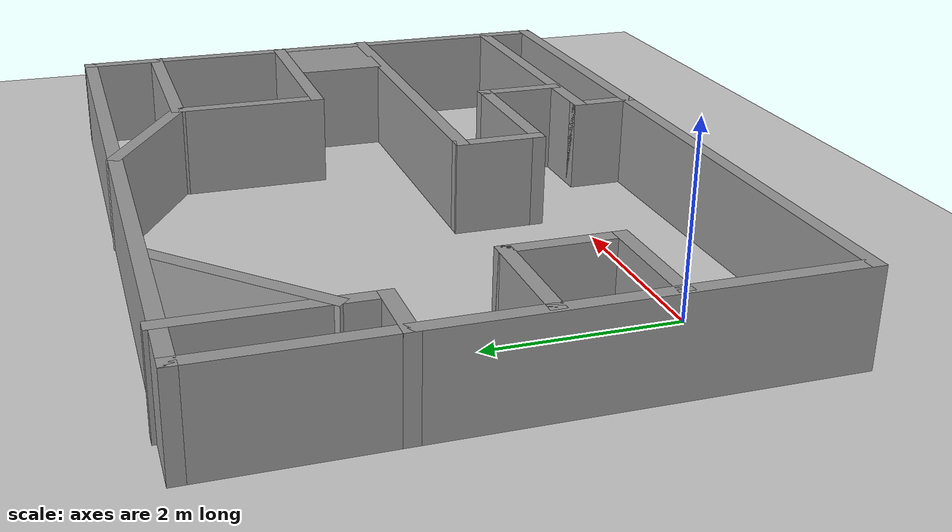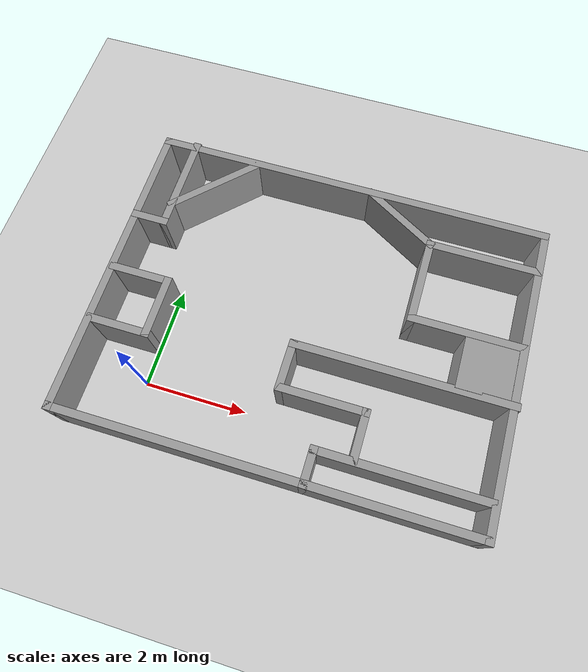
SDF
<sdf version="1.7">
 <world name="default">
  <light name="sun" type="directional">
   <pose>0 0 10 0 -0 0</pose>
   <diffuse>0.8 0.8 0.8 1</diffuse>
   <specular>0.2 0.2 0.2 1</specular>
   <attenuation>
    <range>1000</range>
    <constant>0.9</constant>
    <linear>0.01</linear>
    <quadratic>0.001</quadratic>
   </attenuation>
   <direction>-0.5 0.1 -0.9</direction>
   <spot><inner_angle>0</inner_angle><outer_angle>0</outer_angle><falloff>0</falloff></spot>
  </light>
  <model name="ground_plane">
   <static>1</static>
   <link name="link">
    <collision name="collision">
     <geometry><plane><normal>0 0 1</normal><size>100 100</size></plane></geometry>
     <surface><friction><ode><mu>100</mu><mu2>50</mu2></ode></friction></surface>
    </collision>
    <visual name="visual">
     <cast_shadows>0</cast_shadows>
     <geometry><plane><normal>0 0 1</normal><size>100 100</size></plane></geometry>
     <material>
      <script><uri>file://media/materials/scripts/gazebo.material</uri><name>Gazebo/Grey</name></script>
     </material>
    </visual>
   </link>
  </model>
  <gravity>0 0 -9.8</gravity>
  <magnetic_field>6e-06 2.3e-05 -4.2e-05</magnetic_field>
  <atmosphere type="adiabatic"/>
  <physics type="ode">
   <max_step_size>0.001</max_step_size>
   <real_time_factor>1</real_time_factor>
   <real_time_update_rate>1000</real_time_update_rate>
  </physics>
  <scene><ambient>0.4 0.4 0.4 1</ambient><background>0.7 0.7 0.7 1</background><shadows>1</shadows></scene>
  <spherical_coordinates>
   <surface_model>EARTH_WGS84</surface_model>
   <latitude_deg>0</latitude_deg>
   <longitude_deg>0</longitude_deg>
   <elevation>0</elevation>
   <heading_deg>0</heading_deg>
  </spherical_coordinates>
  <model name="test6">
   <pose>2.74763 1.89938 0 0 -0 0</pose>
   <link name="Wall_12">
    <collision name="Wall_12_Collision">
     <geometry><box><size>0.75 0.15 1</size></box></geometry>
     <pose>0 0 0.5 0 -0 0</pose>
    </collision>
    <visual name="Wall_12_Visual">
     <pose>0 0 0.5 0 -0 0</pose>
     <geometry><box><size>0.75 0.15 1</size></box></geometry>
     <material>
      <script><uri>file://media/materials/scripts/gazebo.material</uri><name>Gazebo/Grey</name></script>
      <ambient>1 1 1 1</ambient>
     </material>
     <meta><layer>0</layer></meta>
    </visual>
    <pose>-3.6435 1.0955 0 0 -0 0</pose>
   </link>
   <link name="Wall_13">
    <collision name="Wall_13_Collision">
     <geometry><box><size>2 0.15 1</size></box></geometry>
     <pose>0 0 0.5 0 -0 0</pose>
    </collision>
    <visual name="Wall_13_Visual">
     <pose>0 0 0.5 0 -0 0</pose>
     <geometry><box><size>2 0.15 1</size></box></geometry>
     <material>
      <script><uri>file://media/materials/scripts/gazebo.material</uri><name>Gazebo/Grey</name></script>
      <ambient>1 1 1 1</ambient>
     </material>
     <meta><layer>0</layer></meta>
    </visual>
    <pose>-3.3435 2.0205 0 0 -0 1.5708</pose>
   </link>
   <link name="Wall_15">
    <collision name="Wall_15_Collision">
     <geometry><box><size>0.75 0.15 1</size></box></geometry>
     <pose>0 0 0.5 0 -0 0</pose>
    </collision>
    <visual name="Wall_15_Visual">
     <pose>0 0 0.5 0 -0 0</pose>
     <geometry><box><size>0.75 0.15 1</size></box></geometry>
     <material>
      <script><uri>file://media/materials/scripts/gazebo.material</uri><name>Gazebo/Grey</name></script>
      <ambient>1 1 1 1</ambient>
     </material>
     <meta><layer>0</layer></meta>
    </visual>
    <pose>0.7435 -2.6455 0 0 -0 1.5708</pose>
   </link>
   <link name="Wall_16">
    <collision name="Wall_16_Collision">
     <geometry><box><size>3.25 0.15 1</size></box></geometry>
     <pose>0 0 0.5 0 -0 0</pose>
    </collision>
    <visual name="Wall_16_Visual">
     <pose>0 0 0.5 0 -0 0</pose>
     <geometry><box><size>3.25 0.15 1</size></box></geometry>
     <material>
      <script><uri>file://media/materials/scripts/gazebo.material</uri><name>Gazebo/Grey</name></script>
      <ambient>1 1 1 1</ambient>
     </material>
     <meta><layer>0</layer></meta>
    </visual>
    <pose>2.2935 -2.3455 0 0 -0 0</pose>
   </link>
   <link name="Wall_18">
    <collision name="Wall_18_Collision">
     <geometry><box><size>1 0.15 1</size></box></geometry>
     <pose>0 0 0.5 0 -0 0</pose>
    </collision>
    <visual name="Wall_18_Visual">
     <pose>0 0 0.5 0 -0 0</pose>
     <geometry><box><size>1 0.15 1</size></box></geometry>
     <material>
      <script><uri>file://media/materials/scripts/gazebo.material</uri><name>Gazebo/Grey</name></script>
      <ambient>1 1 1 1</ambient>
     </material>
     <meta><layer>0</layer></meta>
    </visual>
    <pose>1.4435 -1.8905 0 0 -0 1.5708</pose>
   </link>
   <link name="Wall_19">
    <collision name="Wall_19_Collision">
     <geometry><box><size>1.75 0.15 1</size></box></geometry>
     <pose>0 0 0.5 0 -0 0</pose>
    </collision>
    <visual name="Wall_19_Visual">
     <pose>0 0 0.5 0 -0 0</pose>
     <geometry><box><size>1.75 0.15 1</size></box></geometry>
     <material>
      <script><uri>file://media/materials/scripts/gazebo.material</uri><name>Gazebo/Grey</name></script>
      <ambient>1 1 1 1</ambient>
     </material>
     <meta><layer>0</layer></meta>
    </visual>
    <pose>0.6435 -1.4655 0 0 -0 3.14159</pose>
   </link>
   <link name="Wall_20">
    <collision name="Wall_20_Collision">
     <geometry><box><size>1 0.15 1</size></box></geometry>
     <pose>0 0 0.5 0 -0 0</pose>
    </collision>
    <visual name="Wall_20_Visual">
     <pose>0 0 0.5 0 -0 0</pose>
     <geometry><box><size>1 0.15 1</size></box></geometry>
     <material>
      <script><uri>file://media/materials/scripts/gazebo.material</uri><name>Gazebo/Grey</name></script>
      <ambient>1 1 1 1</ambient>
     </material>
     <meta><layer>0</layer></meta>
    </visual>
    <pose>-0.1565 -1.0405 0 0 -0 1.5708</pose>
   </link>
   <link name="Wall_21">
    <collision name="Wall_21_Collision">
     <geometry><box><size>4.25 0.15 1</size></box></geometry>
     <pose>0 0 0.5 0 -0 0</pose>
    </collision>
    <visual name="Wall_21_Visual">
     <pose>0 0 0.5 0 -0 0</pose>
     <geometry><box><size>4.25 0.15 1</size></box></geometry>
     <material>
      <script><uri>file://media/materials/scripts/gazebo.material</uri><name>Gazebo/Grey</name></script>
      <ambient>1 1 1 1</ambient>
     </material>
     <meta><layer>0</layer></meta>
    </visual>
    <pose>1.8935 -0.6155 0 0 -0 0</pose>
   </link>
   <link name="Wall_23">
    <collision name="Wall_23_Collision">
     <geometry><box><size>2.25 0.15 1</size></box></geometry>
     <pose>0 0 0.5 0 -0 0</pose>
    </collision>
    <visual name="Wall_23_Visual">
     <pose>0 0 0.5 0 -0 0</pose>
     <geometry><box><size>2.25 0.15 1</size></box></geometry>
     <material>
      <script><uri>file://media/materials/scripts/gazebo.material</uri><name>Gazebo/Grey</name></script>
      <ambient>1 1 1 1</ambient>
     </material>
     <meta><layer>0</layer></meta>
    </visual>
    <pose>2.8425 2.0915 0 0 -0 3.14159</pose>
   </link>
   <link name="Wall_24">
    <collision name="Wall_24_Collision">
     <geometry><box><size>1.75 0.15 1</size></box></geometry>
     <pose>0 0 0.5 0 -0 0</pose>
    </collision>
    <visual name="Wall_24_Visual">
     <pose>0 0 0.5 0 -0 0</pose>
     <geometry><box><size>1.75 0.15 1</size></box></geometry>
     <material>
      <script><uri>file://media/materials/scripts/gazebo.material</uri><name>Gazebo/Grey</name></script>
      <ambient>1 1 1 1</ambient>
     </material>
     <meta><layer>0</layer></meta>
    </visual>
    <pose>1.7925 1.2915 0 0 -0 -1.5708</pose>
   </link>
   <link name="Wall_25">
    <collision name="Wall_25_Collision">
     <geometry><box><size>2.25 0.15 1</size></box></geometry>
     <pose>0 0 0.5 0 -0 0</pose>
    </collision>
    <visual name="Wall_25_Visual">
     <pose>0 0 0.5 0 -0 0</pose>
     <geometry><box><size>2.25 0.15 1</size></box></geometry>
     <material>
      <script><uri>file://media/materials/scripts/gazebo.material</uri><name>Gazebo/Grey</name></script>
      <ambient>1 1 1 1</ambient>
     </material>
     <meta><layer>0</layer></meta>
    </visual>
    <pose>2.8425 0.4915 0 0 -0 0</pose>
   </link>
   <link name="Wall_30">
    <collision name="Wall_30_Collision">
     <geometry><box><size>2 0.15 1</size></box></geometry>
     <pose>0 0 0.5 0 -0 0</pose>
    </collision>
    <visual name="Wall_30_Visual">
     <pose>0 0 0.5 0 -0 0</pose>
     <geometry><box><size>2 0.15 1</size></box></geometry>
     <material>
      <script><uri>file://media/materials/scripts/gazebo.material</uri><name>Gazebo/Grey</name></script>
      <ambient>1 1 1 1</ambient>
     </material>
     <meta><layer>0</layer></meta>
    </visual>
    <pose>-2.6945 2.1685 0 0 -0 0.785398</pose>
   </link>
   <link name="Wall_32">
    <collision name="Wall_32_Collision">
     <geometry><box><size>1.75 0.15 1</size></box></geometry>
     <pose>0 0 0.5 0 -0 0</pose>
    </collision>
    <visual name="Wall_32_Visual">
     <pose>0 0 0.5 0 -0 0</pose>
     <geometry><box><size>1.75 0.15 1</size></box></geometry>
     <material>
      <script><uri>file://media/materials/scripts/gazebo.material</uri><name>Gazebo/Grey</name></script>
      <ambient>1 1 1 1</ambient>
     </material>
     <meta><layer>0</layer></meta>
    </visual>
    <pose>1.0995 2.4915 0 0 -0 2.61811</pose>
   </link>
   <link name="Wall_34">
    <collision name="Wall_34_Collision">
     <geometry><box><size>1.25 0.15 1</size></box></geometry>
     <pose>0 0 0.5 0 -0 0</pose>
    </collision>
    <visual name="Wall_34_Visual">
     <pose>0 0 0.5 0 -0 0</pose>
     <geometry><box><size>1.25 0.15 1</size></box></geometry>
     <material>
      <script><uri>file://media/materials/scripts/gazebo.material</uri><name>Gazebo/Grey</name></script>
      <ambient>1 1 1 1</ambient>
     </material>
     <meta><layer>0</layer></meta>
    </visual>
    <pose>-3.3585 -0.0945 0 0 -0 0</pose>
   </link>
   <link name="Wall_35">
    <collision name="Wall_35_Collision">
     <geometry><box><size>1.25 0.15 1</size></box></geometry>
     <pose>0 0 0.5 0 -0 0</pose>
    </collision>
    <visual name="Wall_35_Visual">
     <pose>0 0 0.5 0 -0 0</pose>
     <geometry><box><size>1.25 0.15 1</size></box></geometry>
     <material>
      <script><uri>file://media/materials/scripts/gazebo.material</uri><name>Gazebo/Grey</name></script>
      <ambient>1 1 1 1</ambient>
     </material>
     <meta><layer>0</layer></meta>
    </visual>
    <pose>-2.8085 -0.6445 0 0 -0 -1.5708</pose>
   </link>
   <link name="Wall_36">
    <collision name="Wall_36_Collision">
     <geometry><box><size>1.25 0.15 1</size></box></geometry>
     <pose>0 0 0.5 0 -0 0</pose>
    </collision>
    <visual name="Wall_36_Visual">
     <pose>0 0 0.5 0 -0 0</pose>
     <geometry><box><size>1.25 0.15 1</size></box></geometry>
     <material>
      <script><uri>file://media/materials/scripts/gazebo.material</uri><name>Gazebo/Grey</name></script>
      <ambient>1 1 1 1</ambient>
     </material>
     <meta><layer>0</layer></meta>
    </visual>
    <pose>-3.3585 -1.1945 0 0 -0 3.14159</pose>
   </link>
   <link name="Wall_6">
    <collision name="Wall_6_Collision">
     <geometry><box><size>8 0.15 1</size></box></geometry>
     <pose>0 0 0.5 0 -0 0</pose>
    </collision>
    <visual name="Wall_6_Visual">
     <pose>0 0 0.5 0 -0 0</pose>
     <geometry><box><size>8 0.15 1</size></box></geometry>
     <material>
      <script><uri>file://media/materials/scripts/gazebo.material</uri><name>Gazebo/Grey</name></script>
      <ambient>1 1 1 1</ambient>
     </material>
     <meta><layer>0</layer></meta>
    </visual>
    <pose>-0.0185 -2.9455 0 0 -0 0</pose>
   </link>
   <link name="Wall_7">
    <collision name="Wall_7_Collision">
     <geometry><box><size>6 0.15 1</size></box></geometry>
     <pose>0 0 0.5 0 -0 0</pose>
    </collision>
    <visual name="Wall_7_Visual">
     <pose>0 0 0.5 0 -0 0</pose>
     <geometry><box><size>6 0.15 1</size></box></geometry>
     <material>
      <script><uri>file://media/materials/scripts/gazebo.material</uri><name>Gazebo/Grey</name></script>
      <ambient>1 1 1 1</ambient>
     </material>
     <meta><layer>0</layer></meta>
    </visual>
    <pose>3.9065 -0.0205 0 0 -0 1.5708</pose>
   </link>
   <link name="Wall_8">
    <collision name="Wall_8_Collision">
     <geometry><box><size>8 0.15 1</size></box></geometry>
     <pose>0 0 0.5 0 -0 0</pose>
    </collision>
    <visual name="Wall_8_Visual">
     <pose>0 0 0.5 0 -0 0</pose>
     <geometry><box><size>8 0.15 1</size></box></geometry>
     <material>
      <script><uri>file://media/materials/scripts/gazebo.material</uri><name>Gazebo/Grey</name></script>
      <ambient>1 1 1 1</ambient>
     </material>
     <meta><layer>0</layer></meta>
    </visual>
    <pose>-0.0185 2.9045 0 0 -0 3.14159</pose>
   </link>
   <link name="Wall_9">
    <collision name="Wall_9_Collision">
     <geometry><box><size>6 0.15 1</size></box></geometry>
     <pose>0 0 0.5 0 -0 0</pose>
    </collision>
    <visual name="Wall_9_Visual">
     <pose>0 0 0.5 0 -0 0</pose>
     <geometry><box><size>6 0.15 1</size></box></geometry>
     <material>
      <script><uri>file://media/materials/scripts/gazebo.material</uri><name>Gazebo/Grey</name></script>
      <ambient>1 1 1 1</ambient>
     </material>
     <meta><layer>0</layer></meta>
    </visual>
    <pose>-3.9435 -0.0205 0 0 -0 -1.5708</pose>
   </link>
   <static>1</static>
  </model>
  <model name="unit_box">
   <pose>6.07825 1.8161 0.499909 -0.000155 0.001277 0.000285</pose>
   <link name="link">
    <inertial>
     <mass>1</mass>
     <inertia>
      <ixx>0.166667</ixx>
      <ixy>0</ixy>
      <ixz>0</ixz>
      <iyy>0.166667</iyy>
      <iyz>0</iyz>
      <izz>0.166667</izz>
     </inertia>
    </inertial>
    <collision name="collision"><geometry><box><size>1 1 1</size></box></geometry></collision>
    <visual name="visual">
     <geometry><box><size>1 1 1</size></box></geometry>
     <material>
      <script><name>Gazebo/Grey</name><uri>file://media/materials/scripts/gazebo.material</uri></script>
     </material>
    </visual>
   </link>
  </model>
 </world>
</sdf>
